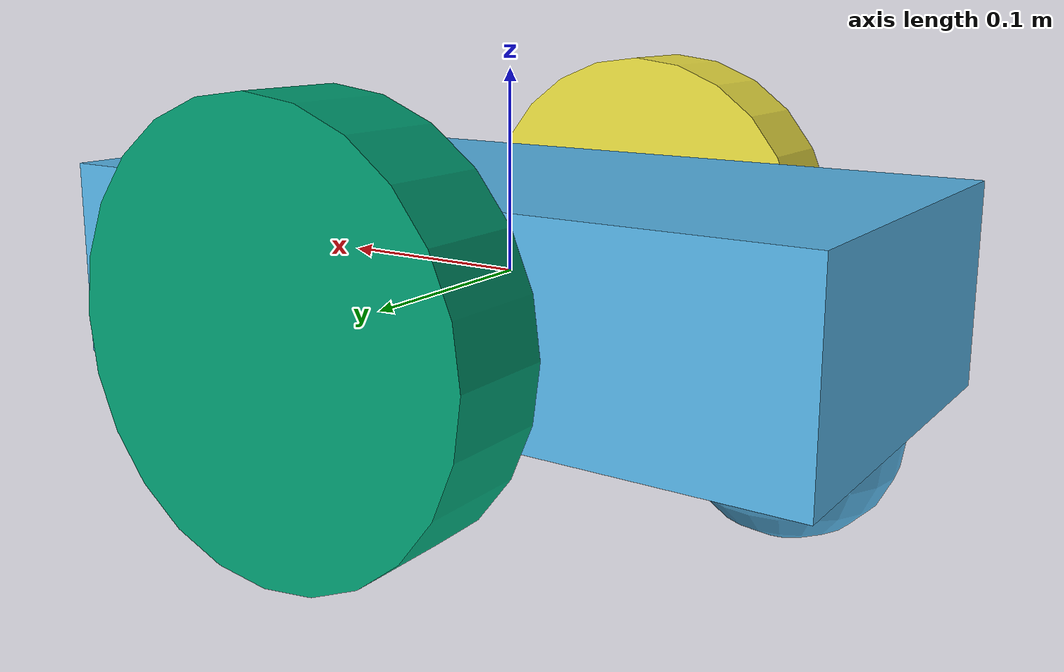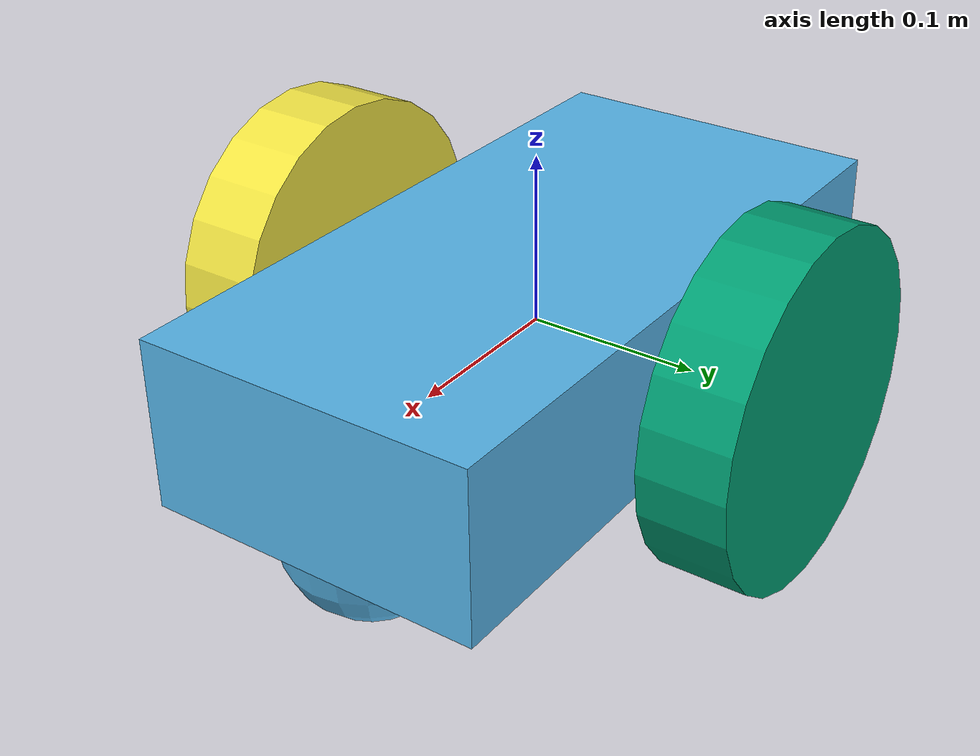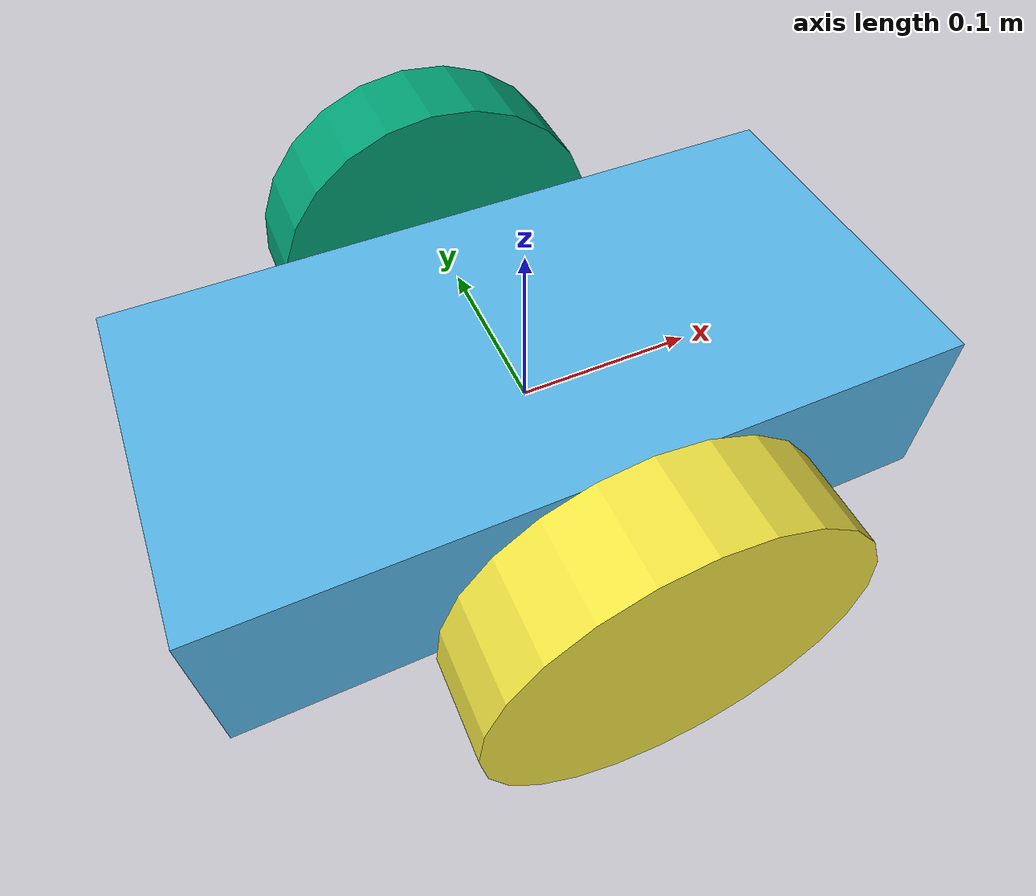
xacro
<?xml version='1.0'?>

<robot name="my_robot" xmlns:xacro="http://www.ros.org/wiki/xacro">

                                                  <link name="robot_footprint"></link>

                                                  <joint name="robot_footprint_joint" type="fixed">
                                                    <origin xyz="0 0 0" rpy="0 0 0" />
                                                    <parent link="robot_footprint"/>
                                                    <child link="chassis" />
                                                  </joint>

                                                  <link name='chassis'>
                                                    <pose>0 0 0.1 0 0 0</pose>

                                                    <inertial>
                                                      <mass value="15.0"/>
                                                      <origin xyz="0.0 0 0" rpy=" 0 0 0"/>
                                                      <inertia
                                                          ixx="0.1" ixy="0" ixz="0"
                                                          iyy="0.1" iyz="0"
                                                          izz="0.1"
                                                      />
                                                    </inertial>

                                                    <collision name='collision'>
                                                      <origin xyz="0 0 0" rpy=" 0 0 0"/>
                                                      <geometry>
                                                        <box size=".4 .2 .1"/>
                                                      </geometry>
                                                    </collision>

                                                    <visual name='chassis_visual'>
                                                      <origin xyz="0 0 0" rpy=" 0 0 0"/>
                                                      <geometry>
                                                        <box size=".4 .2 .1"/>
                                                      </geometry>
                                                    </visual>

                                                    <collision name='back_caster_collision'>
                                                      <origin xyz="-0.15 0 -0.05" rpy=" 0 0 0"/>
                                                      <geometry>
                                                        <sphere radius="0.0499"/>
                                                      </geometry>
                                                    </collision>

                                                    <visual name='back_caster_visual'>
                                                      <origin xyz="-0.15 0 -0.05" rpy=" 0 0 0"/>
                                                      <geometry>
                                                        <sphere radius="0.05"/>
                                                      </geometry>
                                                    </visual>

                                                    <collision name='front_caster_collision'>
                                                      <origin xyz="0.15 0 -0.05" rpy=" 0 0 0"/>
                                                      <geometry>
                                                        <sphere radius="0.0499"/>
                                                      </geometry>
                                                    </collision>

                                                    <visual name='front_caster_visual'>
                                                      <origin xyz="0.15 0 -0.05" rpy=" 0 0 0"/>
                                                      <geometry>
                                                        <sphere radius="0.05"/>
                                                      </geometry>
                                                    </visual>

                                                  </link>
                                                                                                     <link name="left_wheel">
                                                    <inertial>
                                                      <mass value="5.0"/>
                                                      <origin xyz="0.0 0 0" rpy="0 0 0"/>
                                                      <inertia
                                                          ixx="0.1" ixy="0" ixz="0"
                                                          iyy="0.1" iyz="0"
                                                          izz="0.1"
                                                      />
                                                    </inertial>
                                                    <collision name='collision'>
                                                      <origin xyz="0.0 0 0" rpy="0 1.5707 1.5707"/>
                                                      <geometry>
                                                        <cylinder radius="0.1" length="0.05"/>
                                                      </geometry>
                                                    </collision>

                                                    <visual name='chassis_visual'>
                                                      <origin xyz="0.0 0 0" rpy="0 1.5707 1.5707"/>
                                                      <geometry>
                                                        <cylinder radius="0.1" length="0.05"/>
                                                      </geometry>
                                                    </visual>

                                                    </link>
                                                    <joint type="continuous" name="left_wheel_hinge">
							    <origin xyz="0 0.15 0" rpy="0 0 0"/>
							    <child link="left_wheel"/>
							    <parent link="chassis"/>
							    <axis xyz="0 1 0" rpy="0 0 0"/>
							    <limit effort="10000" velocity="1000"/>
							    <dynamics damping="1.0" friction="1.0"/>
							    </joint>

						<link name="right_wheel">
                                                    <inertial>
                                                      <mass value="5.0"/>
                                                      <origin xyz="0.0 0 0" rpy="0 0 0"/>
                                                      <inertia
                                                          ixx="0.1" ixy="0" ixz="0"
                                                          iyy="0.1" iyz="0"
                                                          izz="0.1"
                                                      />
                                                    </inertial>
                                                    <collision name='collision'>
                                                      <origin xyz="0.0 0 0" rpy="0 1.5707 1.5707"/>
                                                      <geometry>
                                                        <cylinder radius="0.1" length="0.05"/>
                                                      </geometry>
                                                    </collision>

                                                    <visual name='chassis_visual'>
                                                      <origin xyz="0.0 0 0" rpy="0 1.5707 1.5707"/>
                                                      <geometry>
                                                        <cylinder radius="0.1" length="0.05"/>
                                                      </geometry>
                                                    </visual>

                                                    </link>
                                                    <joint type="continuous" name="right_wheel_hingo">
							    <origin xyz="0 -0.15 0" rpy="0 0 0"/>
							    <child link="right_wheel"/>
							    <parent link="chassis"/>
							    <axis xyz="0 1 0" rpy="0 0 0"/>
							    <limit effort="10000" velocity="1000"/>
							    <dynamics damping="1.0" friction="1.0"/>

							  </joint>

</robot>
